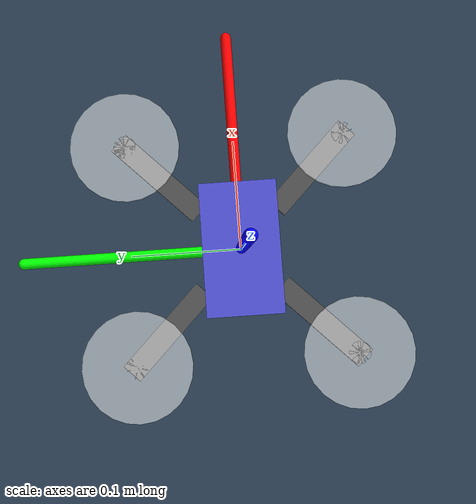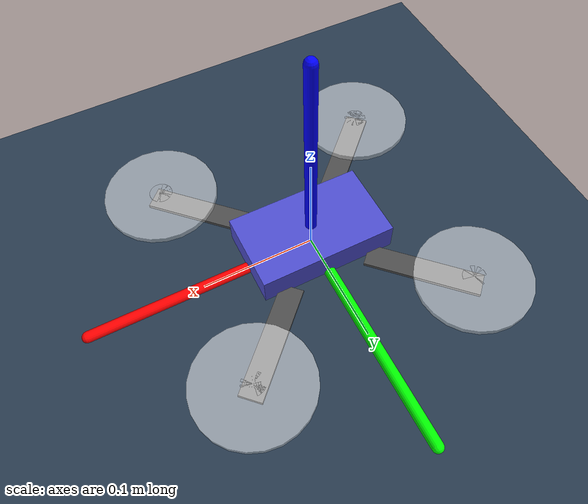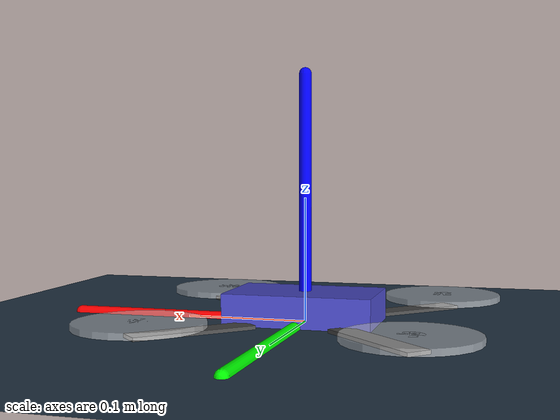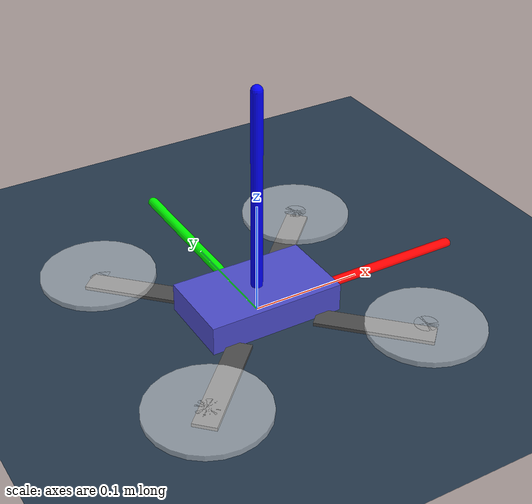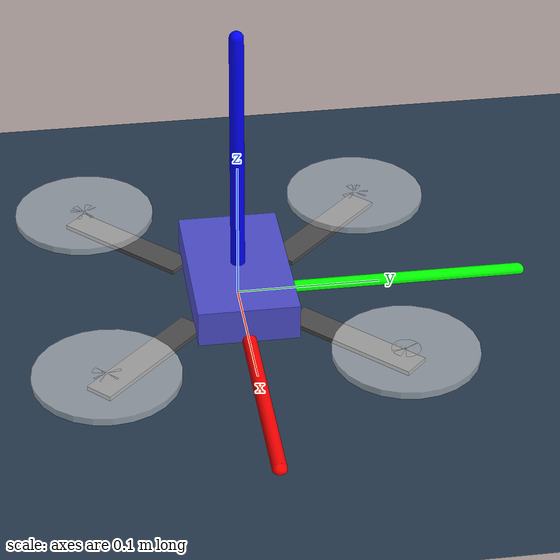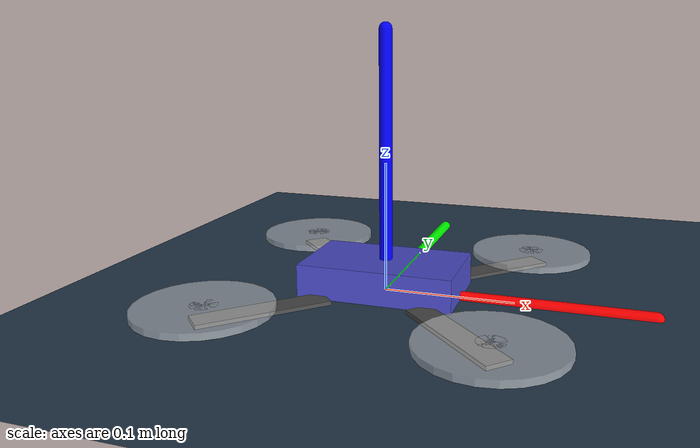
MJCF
<mujoco model="quadrotor">
	<compiler inertiafromgeom="true" coordinate="local" angle="radian"/>
	<option	timestep="0.01" gravity="0 0 -9.81" density="1.2" viscosity="0.00002" />

    <asset>
        <texture type="skybox" builtin="gradient" rgb1="0.3 0.5 0.7" rgb2="0 0 0" width="512" height="512"/>

        <texture name="texplane" type="2d" builtin="checker" rgb1=".2 .3 .4" rgb2=".1 0.15 0.2" width="512" height="512" mark="cross" markrgb=".8 .8 .8"/>

        <texture name="texgeom" type="cube" builtin="flat" mark="cross" width="127" height="1278"
            rgb1="0.8 0.6 0.4" rgb2="0.8 0.6 0.4" markrgb="1 1 1" random="0.01"/>

        <material name="matplane" reflectance="0.3" texture="texplane" texrepeat="1 1" texuniform="true"/>

        <material name="matgeom" texture="texgeom" texuniform="true" rgba="0.8 0.6 .4 1"/>
    </asset>

	<worldbody>
        <geom name="floor" pos="0 0 0" size="0 0 .25" type="plane" material="matplane" condim="3"/>
        <light directional="false" diffuse=".2 .2 .2" specular="0 0 0" pos="0 0 5" dir="0 0 -1" castshadow="false"/>
        <light mode="targetbodycom" target="quadrotor" castshadow="false" directional="false" diffuse=".8 .8 .8" specular="0.3 0.3 0.3" pos="0 0 4.0" dir="0 0 -1"/>
		<body name="quadrotor" pos="0 0 0" >
			<geom name="core" type="box" pos="0 0 0" quat = "1 0 0 0" size="0.06 0.035 0.025"  rgba="0.3 0.3 0.8 1" mass = ".4"/>

			<geom name="a00" type="box" pos=".071 0.071 0.0"	size="0.05 0.01 0.0025"  quat = ".924 0.0 0.0 0.383"  rgba="0.3 0.3 0.3 1" mass = ".025"/>
			<geom name="a10" type="box" pos=".071 -0.071 0.0"	size="0.05 0.01 0.0025"  quat = ".383 0.0 0.0 0.924"  rgba="0.3 0.3 0.3 1" mass = ".025"/>
			<geom name="a20" type="box" pos="-0.071 -0.071 0.0" size="0.05 0.01 0.0025"  quat = "-.383 0.0 0.0 0.924" rgba="0.3 0.3 0.3 1" mass = ".025"/>
			<geom name="a30" type="box" pos="-.071 0.071 0.0"	size="0.05 0.01 0.0025"  quat = ".924 0.0 0.0 -0.383" rgba="0.3 0.3 0.3 1" mass = ".025"/>

			<joint name="root"   type="free" damping="0" armature="0" pos="0 0 0" />

			<!-- Motor sites to attach motor actuators -->

            <site name="motor0" type="cylinder" pos=" 0.1  0.1 0.01"  size="0.01 0.0025"  quat = "1.0 0.0 0.0 0." rgba="1.0 1.0 1.0 0.5"/>
            <site name="motor1" type="cylinder" pos=" 0.1 -0.1 0.01"  size="0.01 0.0025"  quat = "1.0 0.0 0.0 0." rgba="1.0 1.0 1.0 0.5"/>
            <site name="motor2" type="cylinder" pos="-0.1 -0.1 0.01"  size="0.01 0.0025"  quat = "1.0 0.0 0.0 0." rgba="1.0 1.0 1.0 0.5"/>
            <site name="motor3" type="cylinder" pos="-0.1  0.1 0.01"  size="0.01 0.0025"  quat = "1.0 0.0 0.0 0." rgba="1.0 1.0 1.0 0.5"/>

			<!-- Thruster geometries for collisions since site's are excluded from collision checking -->

            <geom name="thruster0" type="cylinder" pos=" 0.1  0.1  0.01" size="0.05 0.0025"  quat = "1.0 0.0 0.0 0.0" rgba="1.0 1.0 1.0 0.5" mass = ".025"/>
            <geom name="thruster1" type="cylinder" pos=" 0.1 -0.1  0.01" size="0.05 0.0025"  quat = "1.0 0.0 0.0 0.0" rgba="1.0 1.0 1.0 0.5" mass = ".025"/>
            <geom name="thruster2" type="cylinder" pos="-0.1 -0.1  0.01" size="0.05 0.0025"  quat = "1.0 0.0 0.0 0.0" rgba="1.0 1.0 1.0 0.5" mass = ".025"/>
            <geom name="thruster3" type="cylinder" pos="-0.1  0.1  0.01" size="0.05 0.0025"  quat = "1.0 0.0 0.0 0.0" rgba="1.0 1.0 1.0 0.5" mass = ".025"/>

            <!-- Visualization of the coordinate frame -->
            <site name="qcX" pos="0.1 0 0" quat="-0.707107 0 0.707107 0"	size="0.005 0.1" type="capsule" rgba="1 0 0 1" />
            <site name="qcY" pos="0 0.1 0" quat="0 0 0.707107 0.707107" 	size="0.005 0.1" type="capsule" rgba="0 1 0 1" />
            <site name="qcZ" pos="0 0 0.1" quat="0.707107 0 0 0" 			size="0.005 0.1" type="capsule" rgba="0 0 1 1" />
		</body>
	</worldbody>
    <actuator>
        <motor ctrllimited="true" ctrlrange="0.0 2.0" gear="0.0  0. 1. 0. 0. 0." site="motor0"/>
        <motor ctrllimited="true" ctrlrange="0.0 2.0" gear="0.0  0. 1. 0. 0. 0." site="motor1"/>
        <motor ctrllimited="true" ctrlrange="0.0 2.0" gear="0.0  0. 1. 0. 0. 0." site="motor2"/>
        <motor ctrllimited="true" ctrlrange="0.0 2.0" gear="0.0  0. 1. 0. 0. 0." site="motor3"/>
	</actuator>
</mujoco>
